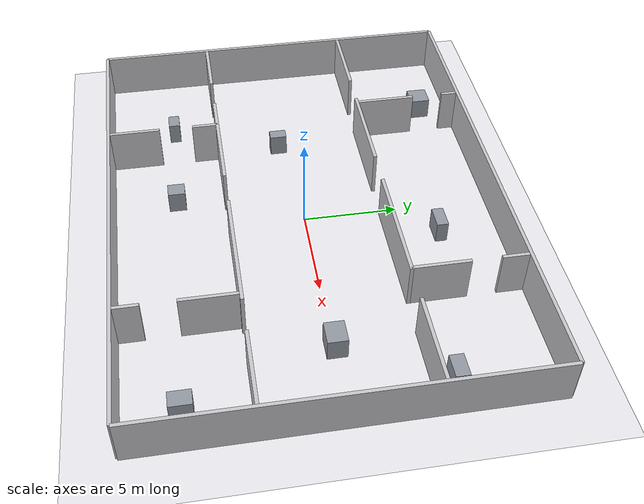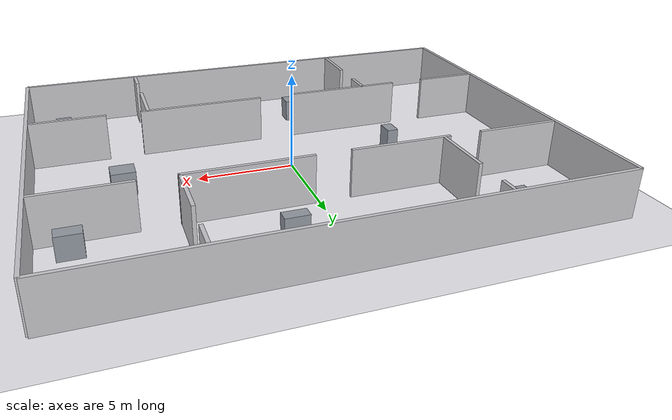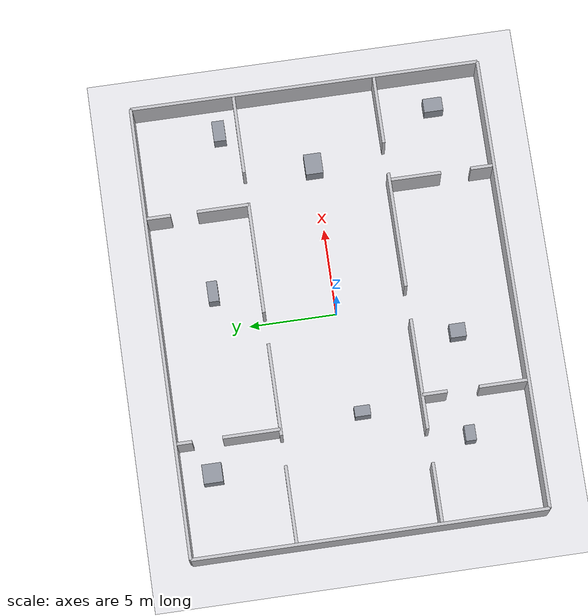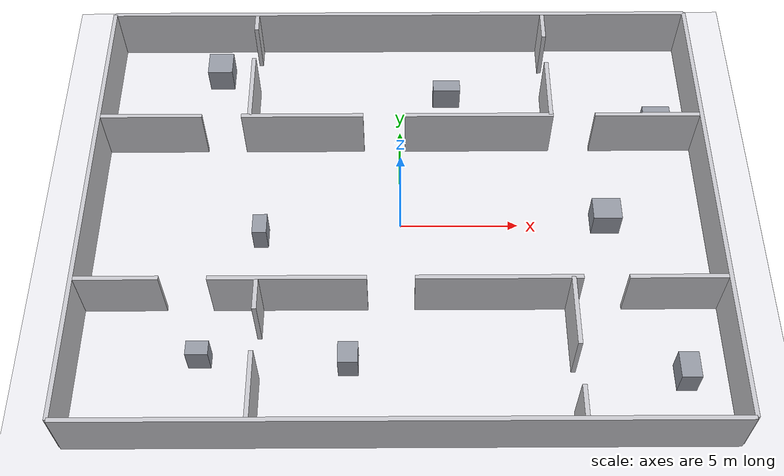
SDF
<?xml version="1.0"?>
<sdf version="1.9"><world name="new_room_world">
<plugin filename="gz-sim-physics-system" name="gz::sim::systems::Physics"/><plugin filename="gz-sim-user-commands-system" name="gz::sim::systems::UserCommands"/><plugin filename="gz-sim-scene-broadcaster-system" name="gz::sim::systems::SceneBroadcaster"/><plugin filename="gz-sim-sensors-system" name="gz::sim::systems::Sensors"><render_engine>ogre2</render_engine></plugin><plugin filename="gz-sim-imu-system" name="gz::sim::systems::Imu"/>
<physics name="new_room_realtime" type="ignored"><max_step_size>0.001</max_step_size><real_time_factor>1</real_time_factor></physics><gravity>0 0 -9.8</gravity><scene><ambient>0.85 0.85 0.87 1</ambient><background>0.68 0.68 0.71 1</background><shadows>false</shadows></scene><light name="sun" type="directional"><cast_shadows>false</cast_shadows><pose>0 0 10 0 0 0</pose><diffuse>0.95 0.95 0.95 1</diffuse><direction>-0.3 0.2 -1</direction></light>
<model name="new_room_ground"><static>true</static><link name="ground_link"><collision name="ground_collision"><geometry><plane><normal>0 0 1</normal><size>40 32</size></plane></geometry></collision><visual name="ground_visual"><geometry><plane><normal>0 0 1</normal><size>40 32</size></plane></geometry><material><ambient>0.92 0.92 0.94 1</ambient><diffuse>0.92 0.92 0.94 1</diffuse></material></visual></link></model>
<model name="mini_hospital_structure"><static>true</static><link name="structure">
<collision name="mx048_c000"><pose>0 10 1.25 0 0 0</pose><geometry><box><size>26 0.18 2.5</size></box></geometry></collision><visual name="mx048_v000"><pose>0 10 1.25 0 0 0</pose><geometry><box><size>26 0.18 2.5</size></box></geometry><material><ambient>0.78 0.78 0.80 1</ambient><diffuse>0.78 0.78 0.80 1</diffuse></material></visual>
<collision name="mx048_c001"><pose>0 -10 1.25 0 0 0</pose><geometry><box><size>26 0.18 2.5</size></box></geometry></collision><visual name="mx048_v001"><pose>0 -10 1.25 0 0 0</pose><geometry><box><size>26 0.18 2.5</size></box></geometry><material><ambient>0.78 0.78 0.80 1</ambient><diffuse>0.78 0.78 0.80 1</diffuse></material></visual>
<collision name="mx048_c002"><pose>-13 0 1.25 0 0 0</pose><geometry><box><size>0.18 20 2.5</size></box></geometry></collision><visual name="mx048_v002"><pose>-13 0 1.25 0 0 0</pose><geometry><box><size>0.18 20 2.5</size></box></geometry><material><ambient>0.78 0.78 0.80 1</ambient><diffuse>0.78 0.78 0.80 1</diffuse></material></visual>
<collision name="mx048_c003"><pose>13 0 1.25 0 0 0</pose><geometry><box><size>0.18 20 2.5</size></box></geometry></collision><visual name="mx048_v003"><pose>13 0 1.25 0 0 0</pose><geometry><box><size>0.18 20 2.5</size></box></geometry><material><ambient>0.78 0.78 0.80 1</ambient><diffuse>0.78 0.78 0.80 1</diffuse></material></visual>
<collision name="mx048_c004"><pose>-10.73 4.1 1.25 0 0 0</pose><geometry><box><size>4.36 0.18 2.5</size></box></geometry></collision><visual name="mx048_v004"><pose>-10.73 4.1 1.25 0 0 0</pose><geometry><box><size>4.36 0.18 2.5</size></box></geometry><material><ambient>0.78 0.78 0.80 1</ambient><diffuse>0.78 0.78 0.80 1</diffuse></material></visual>
<collision name="mx048_c005"><pose>-4.225 4.1 1.25 0 0 0</pose><geometry><box><size>5.25 0.18 2.5</size></box></geometry></collision><visual name="mx048_v005"><pose>-4.225 4.1 1.25 0 0 0</pose><geometry><box><size>5.25 0.18 2.5</size></box></geometry><material><ambient>0.78 0.78 0.80 1</ambient><diffuse>0.78 0.78 0.80 1</diffuse></material></visual>
<collision name="mx048_c006"><pose>3.4 4.1 1.25 0 0 0</pose><geometry><box><size>6.4 0.18 2.5</size></box></geometry></collision><visual name="mx048_v006"><pose>3.4 4.1 1.25 0 0 0</pose><geometry><box><size>6.4 0.18 2.5</size></box></geometry><material><ambient>0.78 0.78 0.80 1</ambient><diffuse>0.78 0.78 0.80 1</diffuse></material></visual>
<collision name="mx048_c007"><pose>10.655 4.1 1.25 0 0 0</pose><geometry><box><size>4.51 0.18 2.5</size></box></geometry></collision><visual name="mx048_v007"><pose>10.655 4.1 1.25 0 0 0</pose><geometry><box><size>4.51 0.18 2.5</size></box></geometry><material><ambient>0.78 0.78 0.80 1</ambient><diffuse>0.78 0.78 0.80 1</diffuse></material></visual>
<collision name="mx048_c008"><pose>-11.23 -4 1.25 0 0 0</pose><geometry><box><size>3.36 0.18 2.5</size></box></geometry></collision><visual name="mx048_v008"><pose>-11.23 -4 1.25 0 0 0</pose><geometry><box><size>3.36 0.18 2.5</size></box></geometry><material><ambient>0.78 0.78 0.80 1</ambient><diffuse>0.78 0.78 0.80 1</diffuse></material></visual>
<collision name="mx048_c009"><pose>-4.5 -4 1.25 0 0 0</pose><geometry><box><size>6.3 0.18 2.5</size></box></geometry></collision><visual name="mx048_v009"><pose>-4.5 -4 1.25 0 0 0</pose><geometry><box><size>6.3 0.18 2.5</size></box></geometry><material><ambient>0.78 0.78 0.80 1</ambient><diffuse>0.78 0.78 0.80 1</diffuse></material></visual>
<collision name="mx048_c010"><pose>3.875 -4 1.25 0 0 0</pose><geometry><box><size>6.65 0.18 2.5</size></box></geometry></collision><visual name="mx048_v010"><pose>3.875 -4 1.25 0 0 0</pose><geometry><box><size>6.65 0.18 2.5</size></box></geometry><material><ambient>0.78 0.78 0.80 1</ambient><diffuse>0.78 0.78 0.80 1</diffuse></material></visual>
<collision name="mx048_c011"><pose>10.955 -4 1.25 0 0 0</pose><geometry><box><size>3.91 0.18 2.5</size></box></geometry></collision><visual name="mx048_v011"><pose>10.955 -4 1.25 0 0 0</pose><geometry><box><size>3.91 0.18 2.5</size></box></geometry><material><ambient>0.78 0.78 0.80 1</ambient><diffuse>0.78 0.78 0.80 1</diffuse></material></visual>
<collision name="mx048_c012"><pose>-6.5 5.725 1.25 0 0 0</pose><geometry><box><size>0.18 3.25 2.5</size></box></geometry></collision><visual name="mx048_v012"><pose>-6.5 5.725 1.25 0 0 0</pose><geometry><box><size>0.18 3.25 2.5</size></box></geometry><material><ambient>0.78 0.78 0.80 1</ambient><diffuse>0.78 0.78 0.80 1</diffuse></material></visual>
<collision name="mx048_c013"><pose>-6.5 9.48 1.25 0 0 0</pose><geometry><box><size>0.18 0.86 2.5</size></box></geometry></collision><visual name="mx048_v013"><pose>-6.5 9.48 1.25 0 0 0</pose><geometry><box><size>0.18 0.86 2.5</size></box></geometry><material><ambient>0.78 0.78 0.80 1</ambient><diffuse>0.78 0.78 0.80 1</diffuse></material></visual>
<collision name="mx048_c014"><pose>6.5 5.575 1.25 0 0 0</pose><geometry><box><size>0.18 2.95 2.5</size></box></geometry></collision><visual name="mx048_v014"><pose>6.5 5.575 1.25 0 0 0</pose><geometry><box><size>0.18 2.95 2.5</size></box></geometry><material><ambient>0.78 0.78 0.80 1</ambient><diffuse>0.78 0.78 0.80 1</diffuse></material></visual>
<collision name="mx048_c015"><pose>6.5 9.23 1.25 0 0 0</pose><geometry><box><size>0.18 1.36 2.5</size></box></geometry></collision><visual name="mx048_v015"><pose>6.5 9.23 1.25 0 0 0</pose><geometry><box><size>0.18 1.36 2.5</size></box></geometry><material><ambient>0.78 0.78 0.80 1</ambient><diffuse>0.78 0.78 0.80 1</diffuse></material></visual>
<collision name="mx048_c016"><pose>-5.7 -8.555 1.25 0 0 0</pose><geometry><box><size>0.18 2.71 2.5</size></box></geometry></collision><visual name="mx048_v016"><pose>-5.7 -8.555 1.25 0 0 0</pose><geometry><box><size>0.18 2.71 2.5</size></box></geometry><material><ambient>0.78 0.78 0.80 1</ambient><diffuse>0.78 0.78 0.80 1</diffuse></material></visual>
<collision name="mx048_c017"><pose>-5.7 -4.7 1.25 0 0 0</pose><geometry><box><size>0.18 1.4 2.5</size></box></geometry></collision><visual name="mx048_v017"><pose>-5.7 -4.7 1.25 0 0 0</pose><geometry><box><size>0.18 1.4 2.5</size></box></geometry><material><ambient>0.78 0.78 0.80 1</ambient><diffuse>0.78 0.78 0.80 1</diffuse></material></visual>
<collision name="mx048_c018"><pose>6.8 -9.28 1.25 0 0 0</pose><geometry><box><size>0.18 1.26 2.5</size></box></geometry></collision><visual name="mx048_v018"><pose>6.8 -9.28 1.25 0 0 0</pose><geometry><box><size>0.18 1.26 2.5</size></box></geometry><material><ambient>0.78 0.78 0.80 1</ambient><diffuse>0.78 0.78 0.80 1</diffuse></material></visual>
<collision name="mx048_c019"><pose>6.8 -5.475 1.25 0 0 0</pose><geometry><box><size>0.18 2.95 2.5</size></box></geometry></collision><visual name="mx048_v019"><pose>6.8 -5.475 1.25 0 0 0</pose><geometry><box><size>0.18 2.95 2.5</size></box></geometry><material><ambient>0.78 0.78 0.80 1</ambient><diffuse>0.78 0.78 0.80 1</diffuse></material></visual>
<collision name="mx048_c020"><pose>-8.2 8.2 0.6 0 0 0</pose><geometry><box><size>1.1 1.1 1.2</size></box></geometry></collision><visual name="mx048_v020"><pose>-8.2 8.2 0.6 0 0 0</pose><geometry><box><size>1.1 1.1 1.2</size></box></geometry><material><ambient>0.58 0.60 0.64 1</ambient><diffuse>0.58 0.60 0.64 1</diffuse></material></visual>
<collision name="mx048_c021"><pose>2.1 6.8 0.6 0 0 0</pose><geometry><box><size>1.2 0.6 1.2</size></box></geometry></collision><visual name="mx048_v021"><pose>2.1 6.8 0.6 0 0 0</pose><geometry><box><size>1.2 0.6 1.2</size></box></geometry><material><ambient>0.58 0.60 0.64 1</ambient><diffuse>0.58 0.60 0.64 1</diffuse></material></visual>
<collision name="mx048_c022"><pose>11.4 5.2 0.6 0 0 0</pose><geometry><box><size>1.2 0.7 1.2</size></box></geometry></collision><visual name="mx048_v022"><pose>11.4 5.2 0.6 0 0 0</pose><geometry><box><size>1.2 0.7 1.2</size></box></geometry><material><ambient>0.58 0.60 0.64 1</ambient><diffuse>0.58 0.60 0.64 1</diffuse></material></visual>
<collision name="mx048_c023"><pose>-8 -6.4 0.6 0 0 0</pose><geometry><box><size>0.9 0.6 1.2</size></box></geometry></collision><visual name="mx048_v023"><pose>-8 -6.4 0.6 0 0 0</pose><geometry><box><size>0.9 0.6 1.2</size></box></geometry><material><ambient>0.58 0.60 0.64 1</ambient><diffuse>0.58 0.60 0.64 1</diffuse></material></visual>
<collision name="mx048_c024"><pose>-2.1 -6.6 0.6 0 0 0</pose><geometry><box><size>0.8 0.9 1.2</size></box></geometry></collision><visual name="mx048_v024"><pose>-2.1 -6.6 0.6 0 0 0</pose><geometry><box><size>0.8 0.9 1.2</size></box></geometry><material><ambient>0.58 0.60 0.64 1</ambient><diffuse>0.58 0.60 0.64 1</diffuse></material></visual>
<collision name="mx048_c025"><pose>11.2 -7.2 0.6 0 0 0</pose><geometry><box><size>0.8 1.1 1.2</size></box></geometry></collision><visual name="mx048_v025"><pose>11.2 -7.2 0.6 0 0 0</pose><geometry><box><size>0.8 1.1 1.2</size></box></geometry><material><ambient>0.58 0.60 0.64 1</ambient><diffuse>0.58 0.60 0.64 1</diffuse></material></visual>
<collision name="mx048_c026"><pose>-5.9 -0.6 0.6 0 0 0</pose><geometry><box><size>0.6 0.9 1.2</size></box></geometry></collision><visual name="mx048_v026"><pose>-5.9 -0.6 0.6 0 0 0</pose><geometry><box><size>0.6 0.9 1.2</size></box></geometry><material><ambient>0.58 0.60 0.64 1</ambient><diffuse>0.58 0.60 0.64 1</diffuse></material></visual>
<collision name="mx048_c027"><pose>8.7 0.1 0.6 0 0 0</pose><geometry><box><size>1.2 1 1.2</size></box></geometry></collision><visual name="mx048_v027"><pose>8.7 0.1 0.6 0 0 0</pose><geometry><box><size>1.2 1 1.2</size></box></geometry><material><ambient>0.58 0.60 0.64 1</ambient><diffuse>0.58 0.60 0.64 1</diffuse></material></visual>
</link></model></world></sdf>
